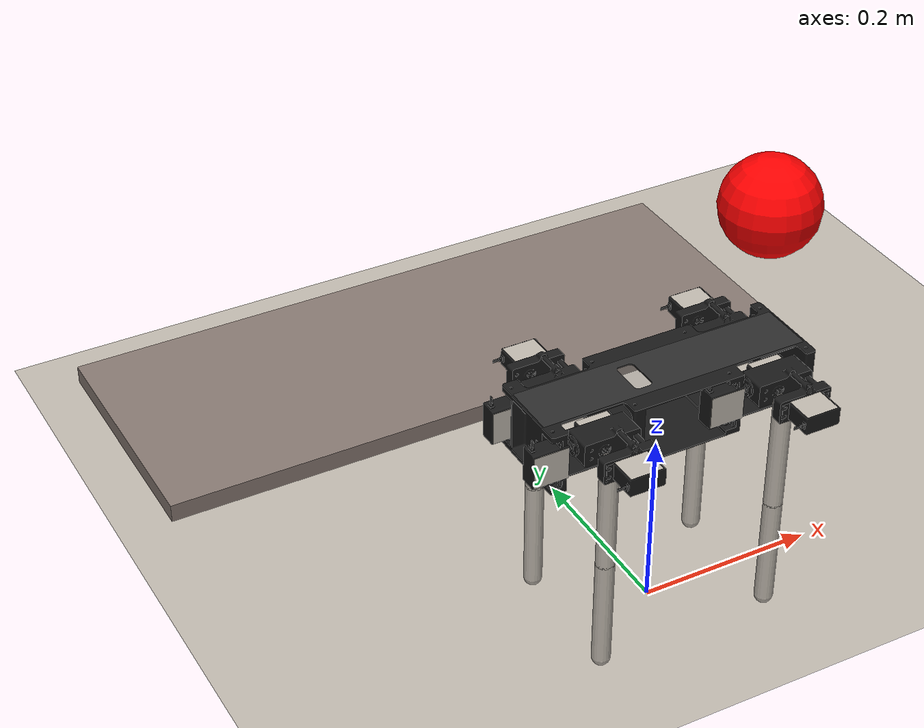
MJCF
<mujoco model="Pupper">
<compiler angle="radian" meshdir="mesh/" texturedir="texture/"/>

<default>
    <joint type="hinge" limited="true" armature="0.01936" solimplimit="0.9 0.95 0.01" solreflimit="0.01 1" damping="0.5"/>
    <geom conaffinity="0" friction="0.8 0.005 0.0001" solimp="0.9 0.95 0.01" solref="0.01 1"/>
    <position forcelimited="true"/>
</default>

<option>
    <flag sensornoise="disable"/>
</option>

<size nstack="300000" nuser_geom="1"/>

<option timestep="0.0001"/>

<asset>
    <texture builtin="gradient" height="100" rgb1="1 1 1" rgb2="0 0 0" type="skybox" width="100"/>
    <texture builtin="flat" height="1278" mark="cross" markrgb="1 1 1" name="texgeom" random="0.01" rgb1="0.8 0.6 0.4" rgb2="0.8 0.6 0.4" type="cube" width="127"/>
    <texture builtin="checker" height="100" name="texplane" rgb1="0 0 0" rgb2="0.8 0.8 0.8" type="2d" width="100"/>
    <material name="MatPlane" reflectance="0.5" shininess="1" specular="1" texrepeat="60 60" texture="texplane"/>
    <material name="geom" texture="texgeom" texuniform="true"/>
  <mesh file="Body.stl"/>
  <mesh file="CLS6336HV.stl"/>
  <mesh file="Hub.stl"/>
  <mesh file="ServoHorn.stl"/>
  <mesh file="UpperLeg.stl"/>
  <mesh file="LowerLeg.stl"/>
  <texture type="2d" file="BrushedAluminum.png"/>
  <texture type="2d" file="Oak.png"/>
  <texture type="2d" file="CarbonFiber2D.png" name="CarbonFiber2D"/>
  <texture type="cube" file="CarbonFiber.png" gridsize="3 4" gridlayout=".U..LFRB.D.."/>
  <texture type="cube" file="CLS6336HV.png"/>
  <texture type="cube" file="Marble.png"/>
  <material name="BrushedAluminum" texture="BrushedAluminum" specular="0.9" shininess="0.9" reflectance="0.3"/>
  <material name="CarbonFiber" texture="CarbonFiber" specular="0.9" shininess="0.9" reflectance="0.3"/>
  <material name="CLS6336HV" texture="CLS6336HV" specular="0.9" shininess="0.9" reflectance="0.3"/>
  <material name="CarbonFiber2D" texture="CarbonFiber2D" specular="0.9" shininess="0.9" reflectance="0.3"/>
  <material name="Oak" texture="Oak" specular="0.9" shininess="0.9" reflectance="0.3" texrepeat="4 4"/>
  <material name="ABS" rgba=".1 .1 .1 1"/>
  <material name="Marble" texture="Marble" rgba=".7 .65 .65 0.9"/>
</asset>

<worldbody>
    <light pos="0.4 -0.2 1.5" dir="-0.4 0.2 -1.5" cutoff="35"/>
    <geom type="plane" material="Oak" size="2 2 .4" conaffinity="1" name="floor"/>
    <body>
      <joint type="free" limited="false" damping=".3"/>
      <geom type="sphere" material="BrushedAluminum" pos="0.5 0.5 0.07" size="0.07" conaffinity="1" name="ball1" rgba="1 0 0 1"/>
    </body>
    <geom type="box" material="Marble" pos="0 0.5 0.011" size="0.4 0.15 0.011" conaffinity="1" name="obstacle"/>
    <body name="torso" pos="0 0 0.26">
        <camera name="track" mode="trackcom" pos="0 -2 0.3" xyaxes="1 0 0 0 0 1"/>
        <freejoint/>
        <!-- This is a +90 degree rotation about the z-axis (i.e. [0 0 1]). -->
        <body pos="0.0 0.0 -0.03425" quat="-0.7071068 0 0 0.7071068">
          <camera name="puppercam" pos="0 0.12 0.11" quat="0.7453559925 0.6666666 0 0"/>
          <geom type="mesh" mesh="Body" pos="0 -0.133925 0.0015" material="ABS"/>
          <site type="box" pos="0 0 0.0666" size="0.03 0.15 0.002" material="CarbonFiber" rgba=".5 .5 .5 .1"/>
          <!--fr servo-->
          <body pos="0.05 0.028 0.0542" quat="0 -0.7071068 0 0.7071068">
            <geom type="mesh" mesh="CLS6336HV" material="ABS"/>
            <site type="box" pos="0.0205 -0.02 0.01" size="0.018 0.019 0.0101" material="CLS6336HV"/>
          </body>
          <!--fl servo-->
          <body pos="-0.03 0.028 0.0542" quat="0 -0.7071068 0 0.7071068">
            <geom type="mesh" mesh="CLS6336HV" material="ABS"/>
            <site type="box" pos="0.0205 -0.02 0.01" size="0.018 0.019 0.0101" material="CLS6336HV"/>
          </body>
          <!--br servo-->
          <body pos="0.05 -0.1721 0.0542" quat="0 -0.7071068 0 0.7071068">
            <geom type="mesh" mesh="CLS6336HV" material="ABS"/>
            <site type="box" pos="0.0205 -0.02 0.01" size="0.018 0.019 0.0101" material="CLS6336HV"/>
          </body>
          <!--bl servo-->
          <body pos="-0.03 -0.1721 0.0542" quat="0 -0.7071068 0 0.7071068">
            <geom type="mesh" mesh="CLS6336HV" material="ABS"/>
            <site type="box" pos="0.0205 -0.02 0.01" size="0.018 0.019 0.0101" material="CLS6336HV"/>
          </body>
        </body>

        <body name="fr_module" pos="0.1 -0.04 0">
            <!-- This is a +90 degree rotation about the z-axis (i.e. [0 1 0]). -->
            <body pos="-0.02 -0.042 0.022" quat="0.7071068 0 0.7071068 0">
              <geom type="mesh" mesh="Hub" material="ABS"/>
              <!-- servo decals -->
              <site type="box" pos="0.0129 -0.02 0.02955" quat="0.7071068 0 -0.7071068 0" size="0.018 0.019 0.0101" material="CLS6336HV"/>
              <site type="box" pos="0.0129 0.044 0.02955" quat="0 -0.7071068 0 0.7071068" size="0.018 0.019 0.0101" material="CLS6336HV"/>
            </body>
            <joint name="fr_x" axis="1 0 0" range="-1.57 1.57"/>
            <body name="fr" pos="0 -0.03 0">
                <joint name="fr_y" axis="0 1 0" range="-1.57 1.57"/>
                <geom axisangle="0 1 0 0" name="fr" fromto="0 0 0 0 0 -0.125" size="0.01" type="capsule" material="CarbonFiber2D" density="50"/>
                <body name="fr2" pos="0 0 -0.1235">
                    <joint name="fr_y2" axis="0 1 0" range="-3.14 0.0"/>
                    <geom axisangle="0 1 0 0" name="fr_l2" fromto="0 0 0 0 0 -0.125" size="0.01" type="capsule" material="CarbonFiber2D" density="50"/>
                </body>
            </body>
        </body>

        <body name="fl_module" pos="0.1 0.04 0">
            <body pos="-0.022 0.042 -0.004" quat="0 0.7071068 0 0.7071068">
              <geom type="mesh" mesh="Hub" material="ABS"/>
              <!-- servo decals -->
              <site type="box" pos="0.0129 -0.02 0.02955" quat="0.7071068 0 -0.7071068 0" size="0.018 0.019 0.0101" material="CLS6336HV"/>
              <site type="box" pos="0.0129 0.044 0.02955" quat="0 -0.7071068 0 0.7071068" size="0.018 0.019 0.0101" material="CLS6336HV"/>
            </body>
            <joint name="fl_x" axis="1 0 0" range="-1.57 1.57"/>
            <body name="fl" pos="0 0.03 0">
                <joint name="fl_y" axis="0 1 0" range="-1.57 1.57"/>
                <geom axisangle="0 1 0 0" name="fl" fromto="0 0 0 0 0 -0.125" size="0.01" type="capsule" material="CarbonFiber2D" density="50"/>
                <body name="fl2" pos="0 0 -0.1235">
                    <joint name="fl_y2" axis="0 1 0" range="-3.14 0.0"/>
                    <geom axisangle="0 1 0 0" name="fl_l2" fromto="0 0 0 0 0 -0.125" size="0.01" type="capsule" material="CarbonFiber2D" density="50"/>
                </body>
            </body>
        </body>

        <body name="br_module" pos="-0.1 -0.04 0">
            <body pos="-0.02 -0.042 0.022" quat="0.7071068 0 0.7071068 0">
              <geom type="mesh" mesh="Hub" material="ABS"/>
              <!-- servo decals -->
              <site type="box" pos="0.0129 -0.02 0.02955" quat="0.7071068 0 -0.7071068 0" size="0.018 0.019 0.0101" material="CLS6336HV"/>
              <site type="box" pos="0.0129 0.044 0.02955" quat="0 -0.7071068 0 0.7071068" size="0.018 0.019 0.0101" material="CLS6336HV"/>
            </body>
            <joint name="br_x" axis="1 0 0" range="-1.57 1.57"/>
            <body name="br" pos="0 -0.03 0">
                <joint name="br_y" axis="0 1 0" range="-1.57 1.57"/>
                <geom axisangle="0 1 0 0" name="br" fromto="0 0 0 0 0 -0.125" size="0.01" type="capsule" material="CarbonFiber2D" density="50"/>
                <body name="br2" pos="0 0 -0.1235">
                    <joint name="br_y2" axis="0 1 0" range="-3.14 0.0"/>
                    <geom axisangle="0 1 0 0" name="br_l2" fromto="0 0 0 0 0 -0.125" size="0.01" type="capsule" material="CarbonFiber2D" density="50"/>
                </body>
            </body>
        </body>

        <body name="bl_module" pos="-0.1 0.04 0">
            <body pos="-0.022 0.042 -0.004" quat="0 0.7071068 0 0.7071068">
              <geom type="mesh" mesh="Hub" material="ABS"/>
              <!-- servo decals -->
              <site type="box" pos="0.0129 -0.02 0.02955" quat="0.7071068 0 -0.7071068 0" size="0.018 0.019 0.0101" material="CLS6336HV"/>
              <site type="box" pos="0.0129 0.044 0.02955" quat="0 -0.7071068 0 0.7071068" size="0.018 0.019 0.0101" material="CLS6336HV"/>
            </body>
            <joint name="bl_x" axis="1 0 0" range="-1.57 1.57"/>
            <body name="bl" pos="0 0.03 0">
                <joint name="bl_y" axis="0 1 0" range="-1.57 1.57"/>
                <geom axisangle="0 1 0 0" name="bl" fromto="0 0 0 0 0 -0.125" size="0.01" type="capsule" material="CarbonFiber2D" density="50"/>
                <body name="bl2" pos="0 0 -0.1235">
                    <joint name="bl_y2" axis="0 1 0" range="-3.14 0.0"/>
                    <geom axisangle="0 1 0 0" name="bl_l2" fromto="0 0 0 0 0 -0.125" size="0.01" type="capsule" material="CarbonFiber2D" density="50"/>
                </body>
            </body>
        </body>
    </body>
</worldbody>

<actuator>
  <!-- kp: Position feedback gain.  -->
  <!-- forcerange: Range for clamping the force output. The compiler expects the first value to be no greater than the second value.  -->
      <position gear="1" joint="fr_x" name="fr_x"   kp="300" forcerange="-6.0 6.0"/>
      <position gear="1" joint="fr_y" name="fr_y"   kp="300" forcerange="-6.0 6.0"/>
      <position gear="1" joint="fr_y2" name="fr_y2" kp="300" forcerange="-6.0 6.0"/>

      <position gear="1" joint="fl_x" name="fl_x"   kp="300" forcerange="-6.0 6.0"/>
      <position gear="1" joint="fl_y" name="fl_y"   kp="300" forcerange="-6.0 6.0"/>
      <position gear="1" joint="fl_y2" name="fl_y2" kp="300" forcerange="-6.0 6.0"/>

      <position gear="1" joint="br_x" name="br_x"   kp="300" forcerange="-6.0 6.0"/>
      <position gear="1" joint="br_y" name="br_y"   kp="300" forcerange="-6.0 6.0"/>
      <position gear="1" joint="br_y2" name="br_y2" kp="300" forcerange="-6.0 6.0"/>

      <position gear="1" joint="bl_x" name="bl_x"   kp="300" forcerange="-6.0 6.0"/>
      <position gear="1" joint="bl_y" name="bl_y"   kp="300" forcerange="-6.0 6.0"/>
      <position gear="1" joint="bl_y2" name="bl_y2" kp="300" forcerange="-6.0 6.0"/>
</actuator>
</mujoco>
